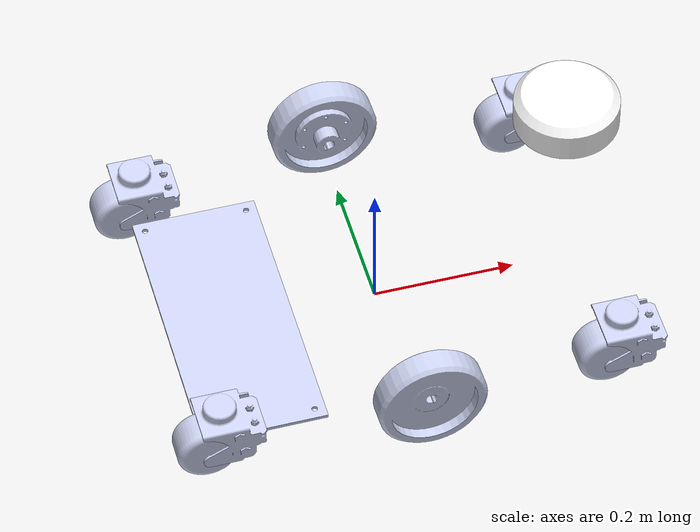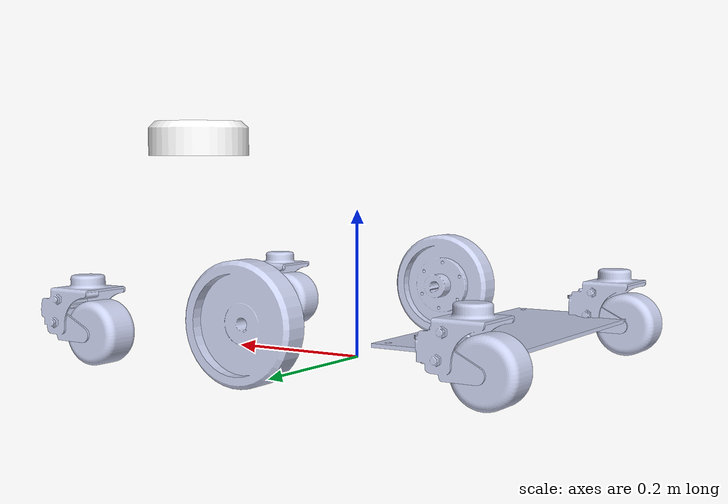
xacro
<?xml version="1.0" encoding="utf-8"?>
<robot name="amr_model" xmlns:xacro="http://ros.org/wiki/xacro">
  <xacro:include filename="$(find amr_description)/urdf/amr_model.gazebo.xacro"/>

  <link name="base_footprint"></link>
  <joint name="base_footprint_joint" type="fixed" >
    <parent link="base_footprint"/>
    <child link="base_link"/>
    <origin xyz="0.0 0.0 0.0225" rpy="0.0 0.0 0.0"/>
  </joint>
<!--base_link-->
  <link
  name="base_link">
  <inertial>
    <origin
      xyz="0.014554 0.00016485 0.10329"
      rpy="0 0 0" />
    <mass
      value="23.478" />
    <inertia
      ixx="0.18885"
      ixy="0.00049266"
      ixz="0.00020396"
      iyy="0.16875"
      iyz="-1.6092E-06"
      izz="0.23165" />
  </inertial>
  <visual>
    <origin
      xyz="0 0 0"
      rpy="0 0 0" />
    <geometry>
      <mesh
        filename="package://amr_description/meshes/base_link.STL" />
    </geometry>
    <material
      name="">
      <color
        rgba="0.79216 0.81961 0.93333 1" />
    </material>
  </visual>
  <collision>
    <origin
      xyz="0 0 0"
      rpy="0 0 0" />
    <geometry>
      <mesh
        filename="package://amr_description/meshes/base_link.STL" />
    </geometry>
  </collision>
</link>

<!--left_wheel_link-->
<link
  name="left_wheel_link">
  <inertial>
    <origin
      xyz="-5.9137E-06 9.0517E-06 -0.0021218"
      rpy="0 0 0" />
    <mass
      value="0.42831" />
    <inertia
      ixx="0.00075914"
      ixy="-1.8039E-08"
      ixz="-3.3253E-08"
      iyy="0.00075916"
      iyz="5.0898E-08"
      izz="0.001427" />
  </inertial>
  <visual>
    <origin
      xyz="0 0 0"
      rpy="0 0 0" />
    <geometry>
      <mesh
        filename="package://amr_description/meshes/left_wheel_link.STL" />
    </geometry>
    <material
      name="">
      <color
        rgba="0.79216 0.81961 0.93333 1" />
    </material>
  </visual>
  <collision>
    <origin
      xyz="0 0 0"
      rpy="0 0 0" />
    <geometry>
      <mesh
        filename="package://amr_description/meshes/left_wheel_link.STL" />
    </geometry>
  </collision>
</link>

<!--left_wheel_joint-->
<joint
  name="left_wheel_joint"
  type="continuous">
  <origin
    xyz="-0.0062617 0.25592 0.0535"
    rpy="1.5708 0 -3.1171" />
  <parent
    link="base_link" />
  <child
    link="left_wheel_link" />
  <axis
    xyz="0 0 1" />
</joint>

<!--right_wheel_link-->
<link
  name="right_wheel_link">
  <inertial>
    <origin
      xyz="6.2045E-06 8.855E-06 0.0021218"
      rpy="0 0 0" />
    <mass
      value="0.42831" />
    <inertia
      ixx="0.00075914"
      ixy="1.8515E-08"
      ixz="-3.4888E-08"
      iyy="0.00075916"
      iyz="-4.9791E-08"
      izz="0.001427" />
  </inertial>
  <visual>
    <origin
      xyz="0 0 0"
      rpy="0 0 0" />
    <geometry>
      <mesh
        filename="package://amr_description/meshes/right_wheel_link.STL" />
    </geometry>
    <material
      name="">
      <color
        rgba="0.79216 0.81961 0.93333 1" />
    </material>
  </visual>
  <collision>
    <origin
      xyz="0 0 0"
      rpy="0 0 0" />
    <geometry>
      <mesh
        filename="package://amr_description/meshes/right_wheel_link.STL" />
    </geometry>
  </collision>
</link>

<!--right_wheel_joint-->
<joint
  name="right_wheel_joint"
  type="continuous">
  <origin
    xyz="0.0062617 -0.25592 0.0535"
    rpy="1.5708 0 -3.1171" />
  <parent
    link="base_link" />
  <child
    link="right_wheel_link" />
  <axis
    xyz="0 0 1" />
</joint>

<!--caster1_link-->
<link
  name="caster1_link">
  <inertial>
    <origin
      xyz="-0.013313 -0.00013952 -0.03353"
      rpy="0 0 0" />
    <mass
      value="0.17421" />
    <inertia
      ixx="0.00016022"
      ixy="3.8557E-09"
      ixz="-5.136E-06"
      iyy="0.0001233"
      iyz="1.5883E-10"
      izz="0.00018347" />
  </inertial>
  <visual>
    <origin
      xyz="0 0 0"
      rpy="0 0 0" />
    <geometry>
      <mesh
        filename="package://amr_description/meshes/caster1_link.STL" />
    </geometry>
    <material
      name="">
      <color
        rgba="0.79216 0.81961 0.93333 1" />
    </material>
  </visual>
  <collision>
    <origin
      xyz="0 0 0"
      rpy="0 0 0" />
    <geometry>
      <mesh
        filename="package://amr_description/meshes/caster1_link.STL" />
    </geometry>
  </collision>
</link>

<!--caster1_joint-->
<joint
  name="caster1_joint"
  type="continuous">
  <origin
    xyz="0.2878 -0.21302 0.0935"
    rpy="0 0 3.1416" />
  <parent
    link="base_link" />
  <child
    link="caster1_link" />
  <axis
    xyz="0 0 1" />
</joint>

<!--caster1_wheel_link-->
<link
  name="caster1_wheel_link">
  <inertial>
    <origin
      xyz="-8.1046E-15 2.2204E-16 -2.1372E-15"
      rpy="0 0 0" />
    <mass
      value="0.26385" />
    <inertia
      ixx="0.00016528"
      ixy="3.735E-21"
      ixz="4.6341E-20"
      iyy="0.00016528"
      iyz="1.6485E-20"
      izz="0.0002273" />
  </inertial>
  <visual>
    <origin
      xyz="0 0 0"
      rpy="0 0 0" />
    <geometry>
      <mesh
        filename="package://amr_description/meshes/caster1_wheel_link.STL" />
    </geometry>
    <material
      name="">
      <color
        rgba="0.79216 0.81961 0.93333 1" />
    </material>
  </visual>
  <collision>
    <origin
      xyz="0 0 0"
      rpy="0 0 0" />
    <geometry>
      <mesh
        filename="package://amr_description/meshes/caster1_wheel_link.STL" />
    </geometry>
  </collision>
</link>

<!--caster1_wheel_joint-->
<joint
  name="caster1_wheel_joint"
  type="continuous">
  <origin
    xyz="0.0215 -0.0005 -0.074"
    rpy="-1.5708 0 0" />
  <parent
    link="caster1_link" />
  <child
    link="caster1_wheel_link" />
  <axis
    xyz="0 0 1" />
</joint>

<!--caster2_link-->
<link
  name="caster2_link">
  <inertial>
    <origin
      xyz="-0.013313 -0.00013953 -0.03353"
      rpy="0 0 0" />
    <mass
      value="0.17421" />
    <inertia
      ixx="0.00016022"
      ixy="3.8383E-09"
      ixz="-5.136E-06"
      iyy="0.0001233"
      iyz="1.4002E-10"
      izz="0.00018347" />
  </inertial>
  <visual>
    <origin
      xyz="0 0 0"
      rpy="0 0 0" />
    <geometry>
      <mesh
        filename="package://amr_description/meshes/caster2_link.STL" />
    </geometry>
    <material
      name="">
      <color
        rgba="0.79216 0.81961 0.93333 1" />
    </material>
  </visual>
  <collision>
    <origin
      xyz="0 0 0"
      rpy="0 0 0" />
    <geometry>
      <mesh
        filename="package://amr_description/meshes/caster2_link.STL" />
    </geometry>
  </collision>
</link>

<!--caster2_joint-->
<joint
  name="caster2_joint"
  type="continuous">
  <origin
    xyz="-0.27703 -0.22684 0.0935"
    rpy="0 0 3.1416" />
  <parent
    link="base_link" />
  <child
    link="caster2_link" />
  <axis
    xyz="0 0 1" />
</joint>

<!--caster2_wheel_link-->
<link
  name="caster2_wheel_link">
  <inertial>
    <origin
      xyz="-8.9789E-15 0 -7.3552E-16"
      rpy="0 0 0" />
    <mass
      value="0.26385" />
    <inertia
      ixx="0.00016528"
      ixy="-3.2044E-22"
      ixz="-8.6895E-21"
      iyy="0.00016528"
      iyz="1.61E-20"
      izz="0.0002273" />
  </inertial>
  <visual>
    <origin
      xyz="0 0 0"
      rpy="0 0 0" />
    <geometry>
      <mesh
        filename="package://amr_description/meshes/caster2_wheel_link.STL" />
    </geometry>
    <material
      name="">
      <color
        rgba="0.79216 0.81961 0.93333 1" />
    </material>
  </visual>
  <collision>
    <origin
      xyz="0 0 0"
      rpy="0 0 0" />
    <geometry>
      <mesh
        filename="package://amr_description/meshes/caster2_wheel_link.STL" />
    </geometry>
  </collision>
</link>

<!--caster2_wheel_joint-->
<joint
  name="caster2_wheel_joint"
  type="continuous">
  <origin
    xyz="0.0215 -0.0005 -0.074"
    rpy="-1.5708 0 0" />
  <parent
    link="caster2_link" />
  <child
    link="caster2_wheel_link" />
  <axis
    xyz="0 0 1" />
</joint>

<!--caster3_link-->
<link
  name="caster3_link">
  <inertial>
    <origin
      xyz="-0.013313 -0.00013953 -0.03353"
      rpy="0 0 0" />
    <mass
      value="0.17421" />
    <inertia
      ixx="0.00016022"
      ixy="3.8392E-09"
      ixz="-5.136E-06"
      iyy="0.0001233"
      iyz="1.3855E-10"
      izz="0.00018347" />
  </inertial>
  <visual>
    <origin
      xyz="0 0 0"
      rpy="0 0 0" />
    <geometry>
      <mesh
        filename="package://amr_description/meshes/caster3_link.STL" />
    </geometry>
    <material
      name="">
      <color
        rgba="0.79216 0.81961 0.93333 1" />
    </material>
  </visual>
  <collision>
    <origin
      xyz="0 0 0"
      rpy="0 0 0" />
    <geometry>
      <mesh
        filename="package://amr_description/meshes/caster3_link.STL" />
    </geometry>
  </collision>
</link>
<joint
  name="caster3_joint"
  type="continuous">
  <origin
    xyz="-0.2878 0.21302 0.0935"
    rpy="0 0 3.1416" />
  <parent
    link="base_link" />
  <child
    link="caster3_link" />
  <axis
    xyz="0 0 1" />
</joint>
<link
  name="caster3_wheel_link">
  <inertial>
    <origin
      xyz="-8.6459E-15 -8.3267E-17 9.992E-16"
      rpy="0 0 0" />
    <mass
      value="0.26385" />
    <inertia
      ixx="0.00016528"
      ixy="1.5381E-20"
      ixz="8.085E-21"
      iyy="0.00016528"
      iyz="-1.2328E-20"
      izz="0.0002273" />
  </inertial>
  <visual>
    <origin
      xyz="0 0 0"
      rpy="0 0 0" />
    <geometry>
      <mesh
        filename="package://amr_description/meshes/caster3_wheel_link.STL" />
    </geometry>
    <material
      name="">
      <color
        rgba="0.79216 0.81961 0.93333 1" />
    </material>
  </visual>
  <collision>
    <origin
      xyz="0 0 0"
      rpy="0 0 0" />
    <geometry>
      <mesh
        filename="package://amr_description/meshes/caster3_wheel_link.STL" />
    </geometry>
  </collision>
</link>
<joint
  name="caster3_wheel_joint"
  type="continuous">
  <origin
    xyz="0.0215000000000007 0.000499999999999723 -0.0739999999999998"
    rpy="1.5707963267949 0 0" />
  <parent
    link="caster3_link" />
  <child
    link="caster3_wheel_link" />
  <axis
    xyz="0 0 1" />
</joint>

<!--caster4_link-->
<link
  name="caster4_link">
  <inertial>
    <origin
      xyz="-0.013313 -0.00013952 -0.03353"
      rpy="0 0 0" />
    <mass
      value="0.17421" />
    <inertia
      ixx="0.00016022"
      ixy="3.8579E-09"
      ixz="-5.136E-06"
      iyy="0.0001233"
      iyz="1.5609E-10"
      izz="0.00018347" />
  </inertial>
  <visual>
    <origin
      xyz="0 0 0"
      rpy="0 0 0" />
    <geometry>
      <mesh
        filename="package://amr_description/meshes/caster4_link.STL" />
    </geometry>
    <material
      name="">
      <color
        rgba="0.79216 0.81961 0.93333 1" />
    </material>
  </visual>
  <collision>
    <origin
      xyz="0 0 0"
      rpy="0 0 0" />
    <geometry>
      <mesh
        filename="package://amr_description/meshes/caster4_link.STL" />
    </geometry>
  </collision>
</link>
<joint
  name="caster4_joint"
  type="continuous">
  <origin
    xyz="0.27703 0.22684 0.0935"
    rpy="0 0 3.1416" />
  <parent
    link="base_link" />
  <child
    link="caster4_link" />
  <axis
    xyz="0 0 1" />
</joint>
<link
  name="caster4_wheel_link">
  <inertial>
    <origin
      xyz="-9.3814E-15 5.5511E-17 2.7756E-15"
      rpy="0 0 0" />
    <mass
      value="0.26385" />
    <inertia
      ixx="0.00016528"
      ixy="-8.3685E-22"
      ixz="-3.0215E-20"
      iyy="0.00016528"
      iyz="-2.2882E-20"
      izz="0.0002273" />
  </inertial>
  <visual>
    <origin
      xyz="0 0 0"
      rpy="0 0 0" />
    <geometry>
      <mesh
        filename="package://amr_description/meshes/caster4_wheel_link.STL" />
    </geometry>
    <material
      name="">
      <color
        rgba="0.79216 0.81961 0.93333 1" />
    </material>
  </visual>
  <collision>
    <origin
      xyz="0 0 0"
      rpy="0 0 0" />
    <geometry>
      <mesh
        filename="package://amr_description/meshes/caster4_wheel_link.STL" />
    </geometry>
  </collision>
</link>
<joint
  name="caster4_wheel_joint"
  type="continuous">
  <origin
    xyz="0.0215 0.0005 -0.074"
    rpy="1.5708 0 0" />
  <parent
    link="caster4_link" />
  <child
    link="caster4_wheel_link" />
  <axis
    xyz="0 0 1" />
</joint>

<link
  name="lidar_link">
  <inertial>
    <origin
      xyz="0 0 -0.02"
      rpy="0 0 0" />
    <mass
      value="0" />
    <inertia
      ixx="0"
      ixy="0"
      ixz="0"
      iyy="0"
      iyz="0"
      izz="0" />
  </inertial>
  <visual>
    <origin
      xyz="0 0 -0.02"
      rpy="0 0 0" />
    <geometry>
      <mesh
        filename="package://amr_description/meshes/lidar_link.STL" />
    </geometry>
    <material
      name="">
      <color
        rgba="1 1 1 1" />
    </material>
  </visual>
  <collision>
    <origin
      xyz="0 0 0"
      rpy="0 0 0" />
    <geometry>
      <mesh
        filename="package://amr_description/meshes/lidar_link.STL" />
    </geometry>
  </collision>
</link>
<joint
  name="lidar_joint"
  type="fixed">
  <origin
    xyz="0.27091 0.0066283 0.27"
    rpy="0 0 0" />
  <parent
    link="base_link" />
  <child
    link="lidar_link" />
  <axis
    xyz="0 0 1" />
</joint>

  <!--IMU-->
  <link name="imu_link"> </link>
  <joint name="imu_joint" type="fixed" >
    <parent link="base_link"/>
    <child link="imu_link"/>
    <origin xyz="0.014527 -0.00019118 0.1033" rpy="0 0 0" />
  </joint>

</robot>
